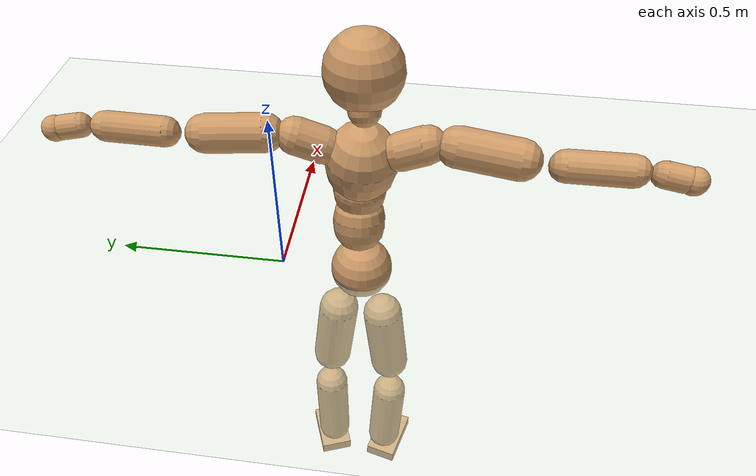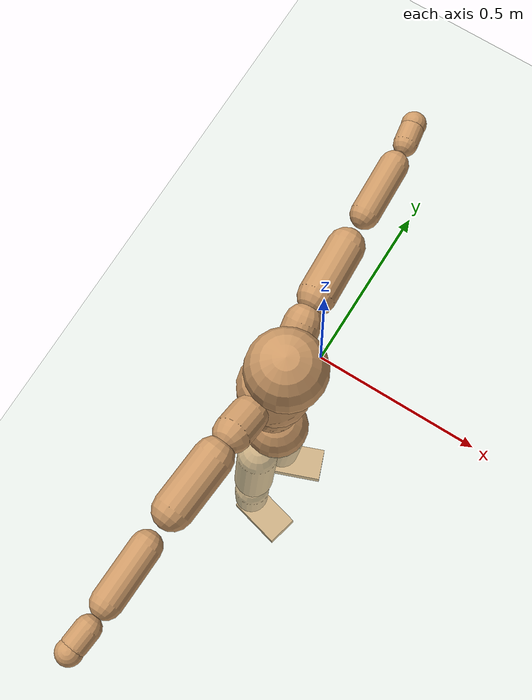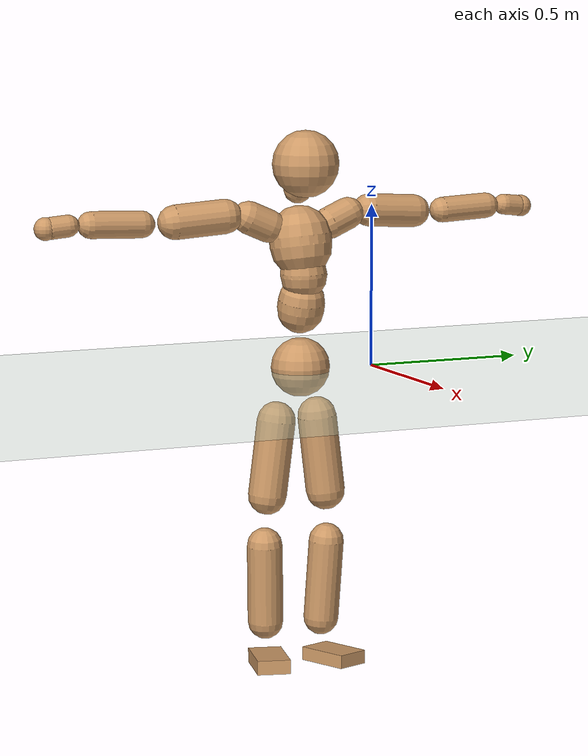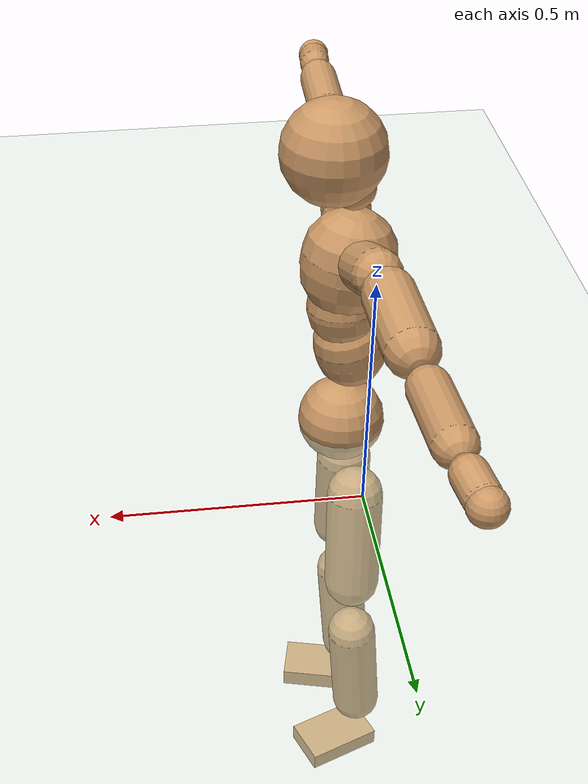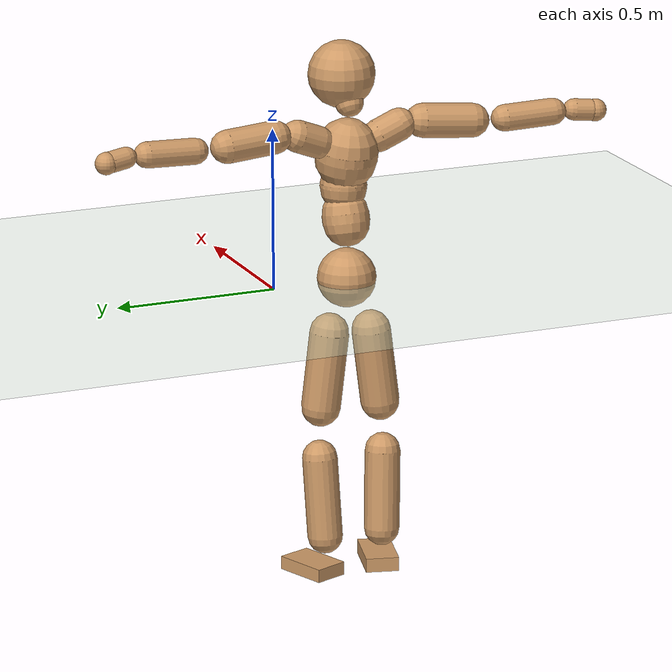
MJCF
<mujoco model="humanoid">
  <compiler coordinate="local" angle="radian"/>
  <default>
    <joint damping="0.0" armature="0.01" stiffness="0.0" limited="true"/>
    <geom conaffinity="1" condim="3" contype="7" margin="0.001" rgba="0.8 0.6 .4 1"/>
  </default>
  <asset>
    <texture type="skybox" builtin="gradient" rgb1=".4 .5 .6" rgb2="0 0 0" width="100" height="100"/>
    <texture builtin="flat" height="1278" mark="cross" markrgb="1 1 1" name="texgeom" random="0.01" rgb1="0.8 0.6 0.4" rgb2="0.8 0.6 0.4" type="cube" width="127"/>
    <texture builtin="checker" height="100" name="texplane" rgb1="0 0 0" rgb2="0.8 0.8 0.8" type="2d" width="100"/>
    <material name="MatPlane" reflectance="0.5" shininess="1" specular="1" texrepeat="60 60" texture="texplane"/>
    <material name="geom" texture="texgeom" texuniform="true"/>
  </asset>
  <worldbody>
    <light cutoff="100" diffuse="1 1 1" dir="-0 0 -1.3" directional="true" exponent="1" pos="0 0 1.3" specular=".1 .1 .1"/>
    <geom conaffinity="1" condim="3" name="floor" pos="0 0 0" rgba="0.8 0.9 0.8 1" size="100 100 .2" type="plane" material="MatPlane"/>
    <body name="Pelvis" pos="0.0015 -0.24 0.0104">
      <freejoint name="Pelvis"/>
      <geom type="sphere" contype="1" conaffinity="1" density="500" size="0.0909" pos="0.0000 0.0000 0.0000" name="Pelvis"/>
      <body name="L_Hip" pos="-0.026 0.0583 -0.0824">
        <joint name="L_Hip_x" type="hinge" pos="0 0 0" axis="1 0 0" stiffness="800" damping="80" armature="0.02" range="-180.0000 180.0000"/>
        <joint name="L_Hip_y" type="hinge" pos="0 0 0" axis="0 1 0" stiffness="800" damping="80" armature="0.02" range="-180.0000 180.0000"/>
        <joint name="L_Hip_z" type="hinge" pos="0 0 0" axis="0 0 1" stiffness="800" damping="80" armature="0.02" range="-180.0000 180.0000"/>
        <geom type="capsule" contype="1" conaffinity="1" density="500" fromto="0.0008 0.0092 -0.0783 0.0032 0.0367 -0.3131" size="0.0603" name="L_Hip"/>
        <body name="L_Knee" pos="0.004 0.0459 -0.3914">
          <joint name="L_Knee_x" type="hinge" pos="0 0 0" axis="1 0 0" stiffness="800" damping="80" armature="0.02" range="-180.0000 180.0000"/>
          <joint name="L_Knee_y" type="hinge" pos="0 0 0" axis="0 1 0" stiffness="800" damping="80" armature="0.02" range="-180.0000 180.0000"/>
          <joint name="L_Knee_z" type="hinge" pos="0 0 0" axis="0 0 1" stiffness="800" damping="80" armature="0.02" range="-180.0000 180.0000"/>
          <geom type="capsule" contype="1" conaffinity="1" density="500" fromto="-0.0073 -0.0027 -0.0828 -0.0293 -0.0106 -0.3310" size="0.0544" name="L_Knee"/>
          <body name="L_Ankle" pos="-0.0366 -0.0133 -0.4138">
            <joint name="L_Ankle_x" type="hinge" pos="0 0 0" axis="1 0 0" stiffness="800" damping="80" armature="0.02" range="-180.0000 180.0000"/>
            <joint name="L_Ankle_y" type="hinge" pos="0 0 0" axis="0 1 0" stiffness="800" damping="80" armature="0.02" range="-180.0000 180.0000"/>
            <joint name="L_Ankle_z" type="hinge" pos="0 0 0" axis="0 0 1" stiffness="800" damping="80" armature="0.02" range="-180.0000 180.0000"/>
            <geom type="box" contype="1" conaffinity="1" density="500" pos="0.0597 0.0228 -0.0299" size="0.0846 0.0531 0.0208" quat="0.9834 0.0000 0.0000 0.1814" name="L_Ankle"/>
            <body name="L_Toe" pos="0.1194 0.0456 -0.0599">
              <joint name="L_Toe_x" type="hinge" pos="0 0 0" axis="1 0 0" stiffness="500" damping="50" armature="0.02" range="-180.0000 180.0000"/>
              <joint name="L_Toe_y" type="hinge" pos="0 0 0" axis="0 1 0" stiffness="500" damping="50" armature="0.02" range="-180.0000 180.0000"/>
              <joint name="L_Toe_z" type="hinge" pos="0 0 0" axis="0 0 1" stiffness="500" damping="50" armature="0.02" range="-180.0000 180.0000"/>
              <geom type="box" contype="1" conaffinity="1" density="500" pos="0.0000 0.0000 0.0310" size="0.0011 0.0025 0.0011" quat="0.9826 0.0000 0.0000 0.1858" name="L_Toe"/>
            </body>
          </body>
        </body>
      </body>
      <body name="R_Hip" pos="-0.0238 -0.0608 -0.0895">
        <joint name="R_Hip_x" type="hinge" pos="0 0 0" axis="1 0 0" stiffness="800" damping="80" armature="0.02" range="-180.0000 180.0000"/>
        <joint name="R_Hip_y" type="hinge" pos="0 0 0" axis="0 1 0" stiffness="800" damping="80" armature="0.02" range="-180.0000 180.0000"/>
        <joint name="R_Hip_z" type="hinge" pos="0 0 0" axis="0 0 1" stiffness="800" damping="80" armature="0.02" range="-180.0000 180.0000"/>
        <geom type="capsule" contype="1" conaffinity="1" density="500" fromto="-0.0014 -0.0093 -0.0772 -0.0057 -0.0373 -0.3087" size="0.0598" name="R_Hip"/>
        <body name="R_Knee" pos="-0.0071 -0.0466 -0.3858">
          <joint name="R_Knee_x" type="hinge" pos="0 0 0" axis="1 0 0" stiffness="800" damping="80" armature="0.02" range="-180.0000 180.0000"/>
          <joint name="R_Knee_y" type="hinge" pos="0 0 0" axis="0 1 0" stiffness="800" damping="80" armature="0.02" range="-180.0000 180.0000"/>
          <joint name="R_Knee_z" type="hinge" pos="0 0 0" axis="0 0 1" stiffness="800" damping="80" armature="0.02" range="-180.0000 180.0000"/>
          <geom type="capsule" contype="1" conaffinity="1" density="500" fromto="-0.0067 0.0037 -0.0815 -0.0269 0.0147 -0.3262" size="0.0549" name="R_Knee"/>
          <body name="R_Ankle" pos="-0.0336 0.0183 -0.4077">
            <joint name="R_Ankle_x" type="hinge" pos="0 0 0" axis="1 0 0" stiffness="800" damping="80" armature="0.02" range="-180.0000 180.0000"/>
            <joint name="R_Ankle_y" type="hinge" pos="0 0 0" axis="0 1 0" stiffness="800" damping="80" armature="0.02" range="-180.0000 180.0000"/>
            <joint name="R_Ankle_z" type="hinge" pos="0 0 0" axis="0 0 1" stiffness="800" damping="80" armature="0.02" range="-180.0000 180.0000"/>
            <geom type="box" contype="1" conaffinity="1" density="500" pos="0.0643 -0.0161 -0.0317" size="0.0897 0.0513 0.022" quat="0.9925 0.0000 0.0000 -0.1223" name="R_Ankle"/>
            <body name="R_Toe" pos="0.1286 -0.0322 -0.0634">
              <joint name="R_Toe_x" type="hinge" pos="0 0 0" axis="1 0 0" stiffness="500" damping="50" armature="0.02" range="-180.0000 180.0000"/>
              <joint name="R_Toe_y" type="hinge" pos="0 0 0" axis="0 1 0" stiffness="500" damping="50" armature="0.02" range="-180.0000 180.0000"/>
              <joint name="R_Toe_z" type="hinge" pos="0 0 0" axis="0 0 1" stiffness="500" damping="50" armature="0.02" range="-180.0000 180.0000"/>
              <geom type="box" contype="1" conaffinity="1" density="500" pos="0.0000 0.0000 0.0334" size="0.001 0.0025 0.0012" quat="0.9936 0.0000 0.0000 -0.1133" name="R_Toe"/>
            </body>
          </body>
        </body>
      </body>
      <body name="Torso" pos="-0.0251 0.004 0.1196">
        <joint name="Torso_x" type="hinge" pos="0 0 0" axis="1 0 0" stiffness="1000" damping="100" armature="0.02" range="-180.0000 180.0000"/>
        <joint name="Torso_y" type="hinge" pos="0 0 0" axis="0 1 0" stiffness="1000" damping="100" armature="0.02" range="-180.0000 180.0000"/>
        <joint name="Torso_z" type="hinge" pos="0 0 0" axis="0 0 1" stiffness="1000" damping="100" armature="0.02" range="-180.0000 180.0000"/>
        <geom type="capsule" contype="1" conaffinity="1" density="500" fromto="0.0201 0.0023 0.0838 0.0134 0.0015 0.0558" size="0.0722" name="Torso"/>
        <body name="Spine" pos="0.0335 0.0038 0.1396">
          <joint name="Spine_x" type="hinge" pos="0 0 0" axis="1 0 0" stiffness="1000" damping="100" armature="0.02" range="-180.0000 180.0000"/>
          <joint name="Spine_y" type="hinge" pos="0 0 0" axis="0 1 0" stiffness="1000" damping="100" armature="0.02" range="-180.0000 180.0000"/>
          <joint name="Spine_z" type="hinge" pos="0 0 0" axis="0 0 1" stiffness="1000" damping="100" armature="0.02" range="-180.0000 180.0000"/>
          <geom type="capsule" contype="1" conaffinity="1" density="500" fromto="0.0016 -0.0018 0.0340 0.0011 -0.0012 0.0227" size="0.0721" name="Spine"/>
          <body name="Chest" pos="0.0027 -0.0031 0.0567">
            <joint name="Chest_x" type="hinge" pos="0 0 0" axis="1 0 0" stiffness="1000" damping="100" armature="0.02" range="-180.0000 180.0000"/>
            <joint name="Chest_y" type="hinge" pos="0 0 0" axis="0 1 0" stiffness="1000" damping="100" armature="0.02" range="-180.0000 180.0000"/>
            <joint name="Chest_z" type="hinge" pos="0 0 0" axis="0 0 1" stiffness="1000" damping="100" armature="0.02" range="-180.0000 180.0000"/>
            <geom type="capsule" contype="1" conaffinity="1" density="500" fromto="-0.0128 -0.0054 0.0866 -0.0086 -0.0036 0.0577" size="0.0955" name="Chest"/>
            <body name="Neck" pos="-0.0262 -0.0136 0.2109">
              <joint name="Neck_x" type="hinge" pos="0 0 0" axis="1 0 0" stiffness="500" damping="50" armature="0.02" range="-180.0000 180.0000"/>
              <joint name="Neck_y" type="hinge" pos="0 0 0" axis="0 1 0" stiffness="500" damping="50" armature="0.02" range="-180.0000 180.0000"/>
              <joint name="Neck_z" type="hinge" pos="0 0 0" axis="0 0 1" stiffness="500" damping="50" armature="0.02" range="-180.0000 180.0000"/>
              <geom type="capsule" contype="1" conaffinity="1" density="500" fromto="0.0108 0.0018 0.0200 0.0430 0.0072 0.0801" size="0.0435" name="Neck"/>
              <body name="Head" pos="0.0538 0.009 0.1001">
                <joint name="Head_x" type="hinge" pos="0 0 0" axis="1 0 0" stiffness="500" damping="50" armature="0.02" range="-180.0000 180.0000"/>
                <joint name="Head_y" type="hinge" pos="0 0 0" axis="0 1 0" stiffness="500" damping="50" armature="0.02" range="-180.0000 180.0000"/>
                <joint name="Head_z" type="hinge" pos="0 0 0" axis="0 0 1" stiffness="500" damping="50" armature="0.02" range="-180.0000 180.0000"/>
                <geom type="sphere" contype="1" conaffinity="1" density="500" size="0.1027" pos="0.0000 0.0000 0.0000" name="Head"/>
              </body>
            </body>
            <body name="L_Thorax" pos="-0.0172 0.0688 0.1109">
              <joint name="L_Thorax_x" type="hinge" pos="0 0 0" axis="1 0 0" stiffness="500" damping="50" armature="0.02" range="-180.0000 180.0000"/>
              <joint name="L_Thorax_y" type="hinge" pos="0 0 0" axis="0 1 0" stiffness="500" damping="50" armature="0.02" range="-180.0000 180.0000"/>
              <joint name="L_Thorax_z" type="hinge" pos="0 0 0" axis="0 0 1" stiffness="500" damping="50" armature="0.02" range="-180.0000 180.0000"/>
              <geom type="capsule" contype="1" conaffinity="1" density="500" fromto="-0.0031 0.0234 0.0093 -0.0124 0.0935 0.0373" size="0.0493" name="L_Thorax"/>
              <body name="L_Shoulder" pos="-0.0154 0.1169 0.0466">
                <joint name="L_Shoulder_x" type="hinge" pos="0 0 0" axis="1 0 0" stiffness="500" damping="50" armature="0.02" range="-720.0000 720.0000"/>
                <joint name="L_Shoulder_y" type="hinge" pos="0 0 0" axis="0 1 0" stiffness="500" damping="50" armature="0.02" range="-720.0000 720.0000"/>
                <joint name="L_Shoulder_z" type="hinge" pos="0 0 0" axis="0 0 1" stiffness="500" damping="50" armature="0.02" range="-720.0000 720.0000"/>
                <geom type="capsule" contype="1" conaffinity="1" density="500" fromto="-0.0030 0.0518 -0.0035 -0.0121 0.2074 -0.0142" size="0.0507" name="L_Shoulder"/>
                <body name="L_Elbow" pos="-0.0151 0.2592 -0.0177">
                  <joint name="L_Elbow_x" type="hinge" pos="0 0 0" axis="1 0 0" stiffness="500" damping="50" armature="0.02" range="-720.0000 720.0000"/>
                  <joint name="L_Elbow_y" type="hinge" pos="0 0 0" axis="0 1 0" stiffness="500" damping="50" armature="0.02" range="-720.0000 720.0000"/>
                  <joint name="L_Elbow_z" type="hinge" pos="0 0 0" axis="0 0 1" stiffness="500" damping="50" armature="0.02" range="-720.0000 720.0000"/>
                  <geom type="capsule" contype="1" conaffinity="1" density="500" fromto="-0.0019 0.0511 0.0020 -0.0077 0.2046 0.0082" size="0.0397" name="L_Elbow"/>
                  <body name="L_Wrist" pos="-0.0097 0.2557 0.0102">
                    <joint name="L_Wrist_x" type="hinge" pos="0 0 0" axis="1 0 0" stiffness="300" damping="30" armature="0.02" range="-180.0000 180.0000"/>
                    <joint name="L_Wrist_y" type="hinge" pos="0 0 0" axis="0 1 0" stiffness="300" damping="30" armature="0.02" range="-180.0000 180.0000"/>
                    <joint name="L_Wrist_z" type="hinge" pos="0 0 0" axis="0 0 1" stiffness="300" damping="30" armature="0.02" range="-180.0000 180.0000"/>
                    <geom type="capsule" contype="1" conaffinity="1" density="500" fromto="-0.0030 0.0164 -0.0020 -0.0119 0.0657 -0.0081" size="0.0323" name="L_Wrist"/>
                    <body name="L_Hand" pos="-0.0149 0.0821 -0.0101">
                      <joint name="L_Hand_x" type="hinge" pos="0 0 0" axis="1 0 0" stiffness="300" damping="30" armature="0.02" range="-180.0000 180.0000"/>
                      <joint name="L_Hand_y" type="hinge" pos="0 0 0" axis="0 1 0" stiffness="300" damping="30" armature="0.02" range="-180.0000 180.0000"/>
                      <joint name="L_Hand_z" type="hinge" pos="0 0 0" axis="0 0 1" stiffness="300" damping="30" armature="0.02" range="-180.0000 180.0000"/>
                      <geom type="sphere" contype="1" conaffinity="1" density="500" size="0.0338" pos="0.0000 0.0000 0.0000" name="L_Hand"/>
                    </body>
                  </body>
                </body>
              </body>
            </body>
            <body name="R_Thorax" pos="-0.0209 -0.0823 0.111">
              <joint name="R_Thorax_x" type="hinge" pos="0 0 0" axis="1 0 0" stiffness="500" damping="50" armature="0.02" range="-180.0000 180.0000"/>
              <joint name="R_Thorax_y" type="hinge" pos="0 0 0" axis="0 1 0" stiffness="500" damping="50" armature="0.02" range="-180.0000 180.0000"/>
              <joint name="R_Thorax_z" type="hinge" pos="0 0 0" axis="0 0 1" stiffness="500" damping="50" armature="0.02" range="-180.0000 180.0000"/>
              <geom type="capsule" contype="1" conaffinity="1" density="500" fromto="-0.0010 -0.0221 0.0098 -0.0040 -0.0885 0.0391" size="0.0504" name="R_Thorax"/>
              <body name="R_Shoulder" pos="-0.005 -0.1106 0.0489">
                <joint name="R_Shoulder_x" type="hinge" pos="0 0 0" axis="1 0 0" stiffness="500" damping="50" armature="0.02" range="-720.0000 720.0000"/>
                <joint name="R_Shoulder_y" type="hinge" pos="0 0 0" axis="0 1 0" stiffness="500" damping="50" armature="0.02" range="-720.0000 720.0000"/>
                <joint name="R_Shoulder_z" type="hinge" pos="0 0 0" axis="0 0 1" stiffness="500" damping="50" armature="0.02" range="-720.0000 720.0000"/>
                <geom type="capsule" contype="1" conaffinity="1" density="500" fromto="-0.0049 -0.0524 -0.0039 -0.0195 -0.2096 -0.0158" size="0.053" name="R_Shoulder"/>
                <body name="R_Elbow" pos="-0.0244 -0.262 -0.0197">
                  <joint name="R_Elbow_x" type="hinge" pos="0 0 0" axis="1 0 0" stiffness="500" damping="50" armature="0.02" range="-720.0000 720.0000"/>
                  <joint name="R_Elbow_y" type="hinge" pos="0 0 0" axis="0 1 0" stiffness="500" damping="50" armature="0.02" range="-720.0000 720.0000"/>
                  <joint name="R_Elbow_z" type="hinge" pos="0 0 0" axis="0 0 1" stiffness="500" damping="50" armature="0.02" range="-720.0000 720.0000"/>
                  <geom type="capsule" contype="1" conaffinity="1" density="500" fromto="-0.0014 -0.0533 0.0017 -0.0057 -0.2131 0.0068" size="0.0414" name="R_Elbow"/>
                  <body name="R_Wrist" pos="-0.0071 -0.2664 0.0085">
                    <joint name="R_Wrist_x" type="hinge" pos="0 0 0" axis="1 0 0" stiffness="300" damping="30" armature="0.02" range="-180.0000 180.0000"/>
                    <joint name="R_Wrist_y" type="hinge" pos="0 0 0" axis="0 1 0" stiffness="300" damping="30" armature="0.02" range="-180.0000 180.0000"/>
                    <joint name="R_Wrist_z" type="hinge" pos="0 0 0" axis="0 0 1" stiffness="300" damping="30" armature="0.02" range="-180.0000 180.0000"/>
                    <geom type="capsule" contype="1" conaffinity="1" density="500" fromto="-0.0020 -0.0172 -0.0016 -0.0078 -0.0688 -0.0066" size="0.0337" name="R_Wrist"/>
                    <body name="R_Hand" pos="-0.0098 -0.086 -0.0082">
                      <joint name="R_Hand_x" type="hinge" pos="0 0 0" axis="1 0 0" stiffness="300" damping="30" armature="0.02" range="-180.0000 180.0000"/>
                      <joint name="R_Hand_y" type="hinge" pos="0 0 0" axis="0 1 0" stiffness="300" damping="30" armature="0.02" range="-180.0000 180.0000"/>
                      <joint name="R_Hand_z" type="hinge" pos="0 0 0" axis="0 0 1" stiffness="300" damping="30" armature="0.02" range="-180.0000 180.0000"/>
                      <geom type="sphere" contype="1" conaffinity="1" density="500" size="0.0350" pos="0.0000 0.0000 0.0000" name="R_Hand"/>
                    </body>
                  </body>
                </body>
              </body>
            </body>
          </body>
        </body>
      </body>
    </body>
  </worldbody>
  <actuator>
    <motor name="L_Hip_x" joint="L_Hip_x" gear="500"/>
    <motor name="L_Hip_y" joint="L_Hip_y" gear="500"/>
    <motor name="L_Hip_z" joint="L_Hip_z" gear="500"/>
    <motor name="L_Knee_x" joint="L_Knee_x" gear="500"/>
    <motor name="L_Knee_y" joint="L_Knee_y" gear="500"/>
    <motor name="L_Knee_z" joint="L_Knee_z" gear="500"/>
    <motor name="L_Ankle_x" joint="L_Ankle_x" gear="500"/>
    <motor name="L_Ankle_y" joint="L_Ankle_y" gear="500"/>
    <motor name="L_Ankle_z" joint="L_Ankle_z" gear="500"/>
    <motor name="L_Toe_x" joint="L_Toe_x" gear="500"/>
    <motor name="L_Toe_y" joint="L_Toe_y" gear="500"/>
    <motor name="L_Toe_z" joint="L_Toe_z" gear="500"/>
    <motor name="R_Hip_x" joint="R_Hip_x" gear="500"/>
    <motor name="R_Hip_y" joint="R_Hip_y" gear="500"/>
    <motor name="R_Hip_z" joint="R_Hip_z" gear="500"/>
    <motor name="R_Knee_x" joint="R_Knee_x" gear="500"/>
    <motor name="R_Knee_y" joint="R_Knee_y" gear="500"/>
    <motor name="R_Knee_z" joint="R_Knee_z" gear="500"/>
    <motor name="R_Ankle_x" joint="R_Ankle_x" gear="500"/>
    <motor name="R_Ankle_y" joint="R_Ankle_y" gear="500"/>
    <motor name="R_Ankle_z" joint="R_Ankle_z" gear="500"/>
    <motor name="R_Toe_x" joint="R_Toe_x" gear="500"/>
    <motor name="R_Toe_y" joint="R_Toe_y" gear="500"/>
    <motor name="R_Toe_z" joint="R_Toe_z" gear="500"/>
    <motor name="Torso_x" joint="Torso_x" gear="500"/>
    <motor name="Torso_y" joint="Torso_y" gear="500"/>
    <motor name="Torso_z" joint="Torso_z" gear="500"/>
    <motor name="Spine_x" joint="Spine_x" gear="500"/>
    <motor name="Spine_y" joint="Spine_y" gear="500"/>
    <motor name="Spine_z" joint="Spine_z" gear="500"/>
    <motor name="Chest_x" joint="Chest_x" gear="500"/>
    <motor name="Chest_y" joint="Chest_y" gear="500"/>
    <motor name="Chest_z" joint="Chest_z" gear="500"/>
    <motor name="Neck_x" joint="Neck_x" gear="500"/>
    <motor name="Neck_y" joint="Neck_y" gear="500"/>
    <motor name="Neck_z" joint="Neck_z" gear="500"/>
    <motor name="Head_x" joint="Head_x" gear="500"/>
    <motor name="Head_y" joint="Head_y" gear="500"/>
    <motor name="Head_z" joint="Head_z" gear="500"/>
    <motor name="L_Thorax_x" joint="L_Thorax_x" gear="500"/>
    <motor name="L_Thorax_y" joint="L_Thorax_y" gear="500"/>
    <motor name="L_Thorax_z" joint="L_Thorax_z" gear="500"/>
    <motor name="L_Shoulder_x" joint="L_Shoulder_x" gear="500"/>
    <motor name="L_Shoulder_y" joint="L_Shoulder_y" gear="500"/>
    <motor name="L_Shoulder_z" joint="L_Shoulder_z" gear="500"/>
    <motor name="L_Elbow_x" joint="L_Elbow_x" gear="500"/>
    <motor name="L_Elbow_y" joint="L_Elbow_y" gear="500"/>
    <motor name="L_Elbow_z" joint="L_Elbow_z" gear="500"/>
    <motor name="L_Wrist_x" joint="L_Wrist_x" gear="500"/>
    <motor name="L_Wrist_y" joint="L_Wrist_y" gear="500"/>
    <motor name="L_Wrist_z" joint="L_Wrist_z" gear="500"/>
    <motor name="L_Hand_x" joint="L_Hand_x" gear="500"/>
    <motor name="L_Hand_y" joint="L_Hand_y" gear="500"/>
    <motor name="L_Hand_z" joint="L_Hand_z" gear="500"/>
    <motor name="R_Thorax_x" joint="R_Thorax_x" gear="500"/>
    <motor name="R_Thorax_y" joint="R_Thorax_y" gear="500"/>
    <motor name="R_Thorax_z" joint="R_Thorax_z" gear="500"/>
    <motor name="R_Shoulder_x" joint="R_Shoulder_x" gear="500"/>
    <motor name="R_Shoulder_y" joint="R_Shoulder_y" gear="500"/>
    <motor name="R_Shoulder_z" joint="R_Shoulder_z" gear="500"/>
    <motor name="R_Elbow_x" joint="R_Elbow_x" gear="500"/>
    <motor name="R_Elbow_y" joint="R_Elbow_y" gear="500"/>
    <motor name="R_Elbow_z" joint="R_Elbow_z" gear="500"/>
    <motor name="R_Wrist_x" joint="R_Wrist_x" gear="500"/>
    <motor name="R_Wrist_y" joint="R_Wrist_y" gear="500"/>
    <motor name="R_Wrist_z" joint="R_Wrist_z" gear="500"/>
    <motor name="R_Hand_x" joint="R_Hand_x" gear="500"/>
    <motor name="R_Hand_y" joint="R_Hand_y" gear="500"/>
    <motor name="R_Hand_z" joint="R_Hand_z" gear="500"/>
  </actuator>
  <contact>
    <exclude body1="Torso" body2="Chest"/>
    <exclude body1="Head" body2="Chest"/>
    <exclude body1="R_Knee" body2="R_Toe"/>
    <exclude body1="R_Knee" body2="L_Ankle"/>
    <exclude body1="R_Knee" body2="L_Toe"/>
    <exclude body1="L_Knee" body2="L_Toe"/>
    <exclude body1="L_Knee" body2="R_Ankle"/>
    <exclude body1="L_Knee" body2="R_Toe"/>
    <exclude body1="L_Shoulder" body2="Chest"/>
    <exclude body1="R_Shoulder" body2="Chest"/>
  </contact>
  <sensor/>
  <size njmax="700" nconmax="700"/>
</mujoco>
